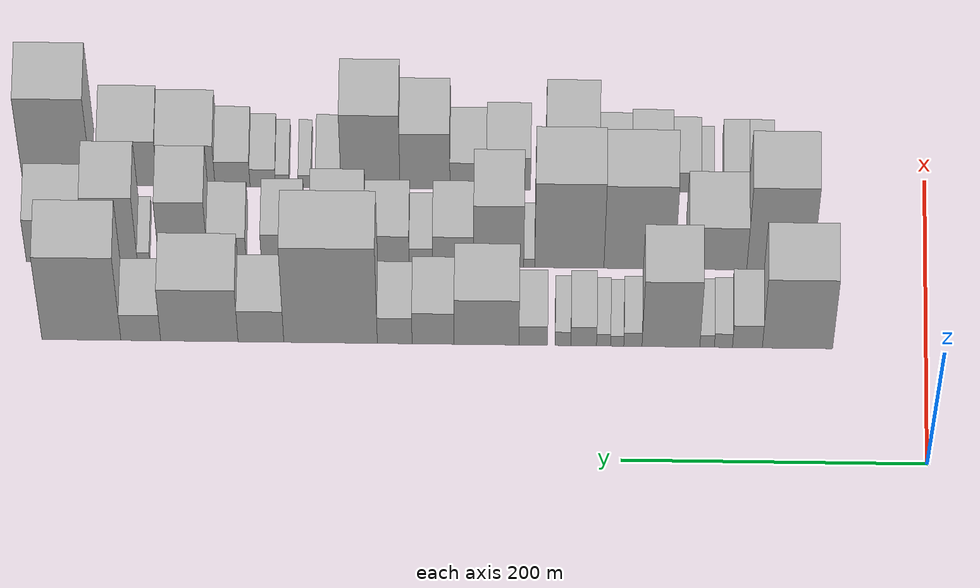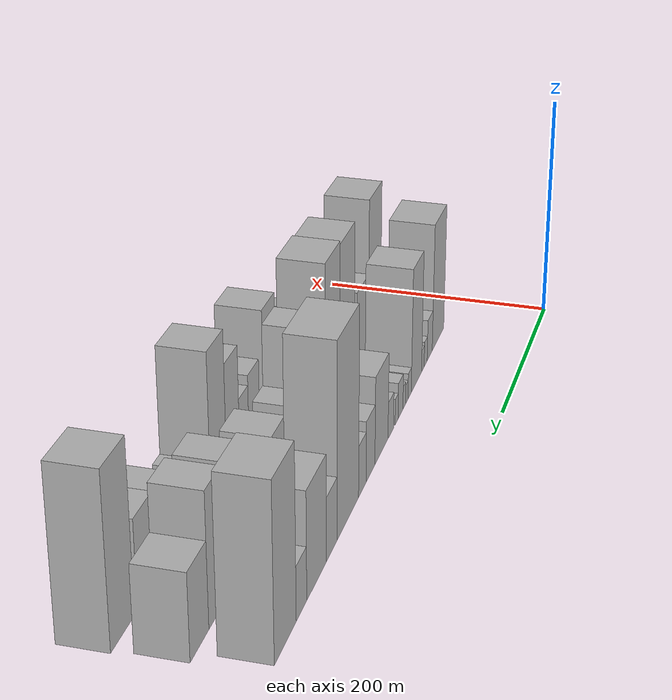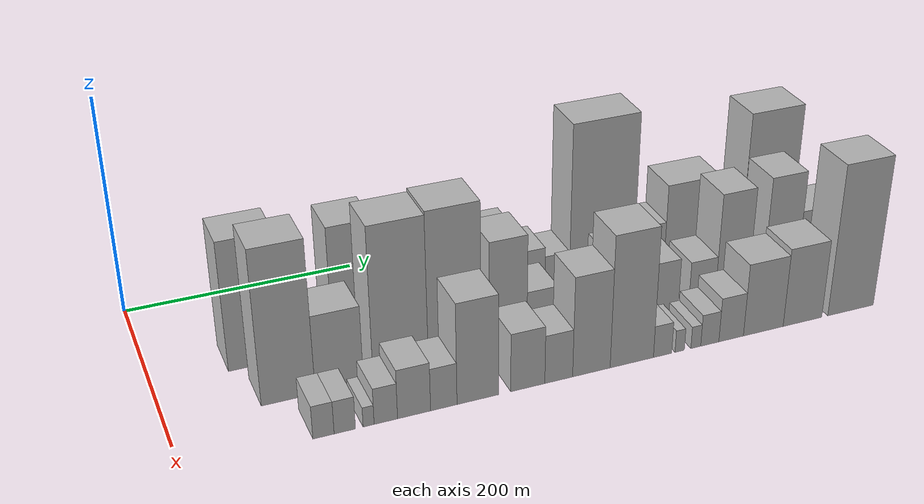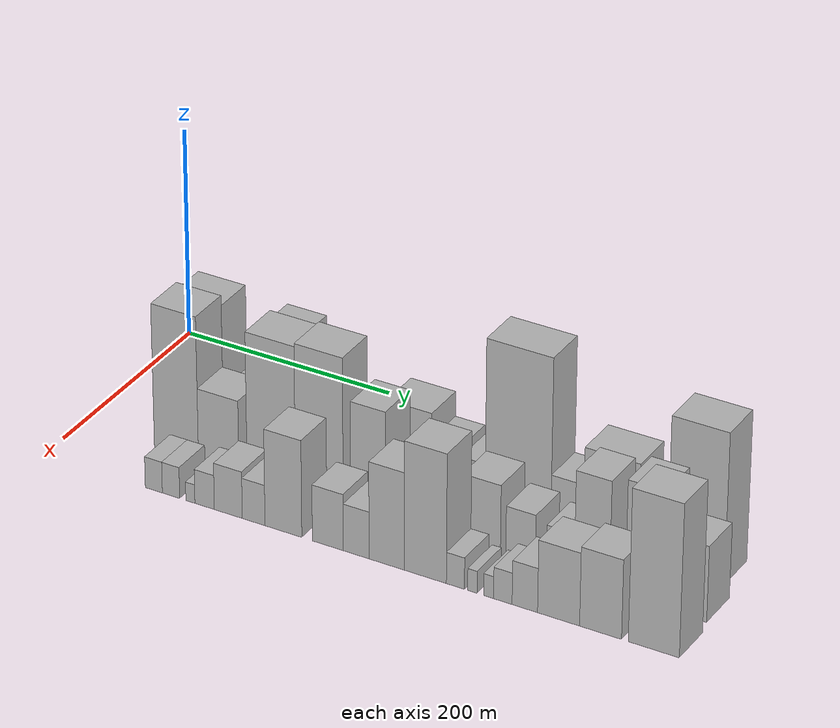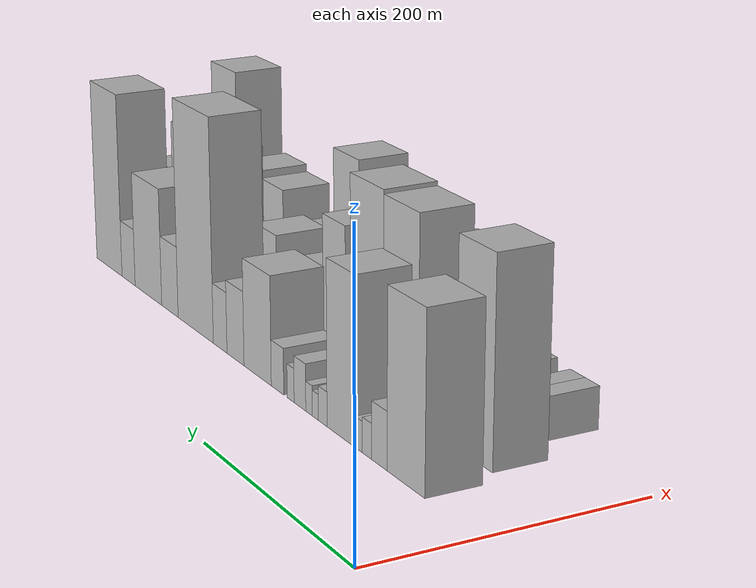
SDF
<sdf version="1.6">
 <world name="default">
  <model name="building_19">
   <static>1</static>
   <pose>100.0000 84.7058 0 0.000000 0.000000 0.000000</pose>
   <link name="link">
    <pose>0 0 60.00 0 0 0</pose>
    <collision name="collision"><geometry><box><size>40.0000 46.1204 120.0000</size></box></geometry></collision>
    <visual name="visual">
     <cast_shadows>0</cast_shadows>
     <geometry><box><size>40.0000 46.1204 120.0000</size></box></geometry>
     <material>
      <script>
       <uri>model://HANNAS_wall/materials/scripts</uri>
       <uri>model://HANNAS_wall/materials/textures</uri>
       <name>vrc/HANNAS_wall</name>
      </script>
     </material>
    </visual>
   </link>
  </model>
  <model name="building_20">
   <static>1</static>
   <pose>100.0000 117.5648 0 0.000000 0.000000 0.000000</pose>
   <link name="link">
    <pose>0 0 19.50 0 0 0</pose>
    <collision name="collision"><geometry><box><size>40.0000 19.5976 39.0000</size></box></geometry></collision>
    <visual name="visual">
     <cast_shadows>0</cast_shadows>
     <geometry><box><size>40.0000 19.5976 39.0000</size></box></geometry>
     <material>
      <script>
       <uri>model://HANNAS_wall/materials/scripts</uri>
       <uri>model://HANNAS_wall/materials/textures</uri>
       <name>vrc/HANNAS_wall</name>
      </script>
     </material>
    </visual>
   </link>
  </model>
  <model name="building_21">
   <static>1</static>
   <pose>100.0000 133.3161 0 0.000000 0.000000 0.000000</pose>
   <link name="link">
    <pose>0 0 12.00 0 0 0</pose>
    <collision name="collision"><geometry><box><size>40.0000 11.9050 24.0000</size></box></geometry></collision>
    <visual name="visual">
     <cast_shadows>0</cast_shadows>
     <geometry><box><size>40.0000 11.9050 24.0000</size></box></geometry>
     <material>
      <script>
       <uri>model://HANNAS_wall/materials/scripts</uri>
       <uri>model://HANNAS_wall/materials/textures</uri>
       <name>vrc/HANNAS_wall</name>
      </script>
     </material>
    </visual>
   </link>
  </model>
  <model name="building_22">
   <static>1</static>
   <pose>100.0000 144.0258 0 0.000000 0.000000 0.000000</pose>
   <link name="link">
    <pose>0 0 10.50 0 0 0</pose>
    <collision name="collision"><geometry><box><size>40.0000 9.5144 21.0000</size></box></geometry></collision>
    <visual name="visual">
     <cast_shadows>0</cast_shadows>
     <geometry><box><size>40.0000 9.5144 21.0000</size></box></geometry>
     <material>
      <script>
       <uri>model://HANNAS_wall/materials/scripts</uri>
       <uri>model://HANNAS_wall/materials/textures</uri>
       <name>vrc/HANNAS_wall</name>
      </script>
     </material>
    </visual>
   </link>
  </model>
  <model name="building_23">
   <static>1</static>
   <pose>100.0000 167.7556 0 0.000000 0.000000 0.000000</pose>
   <link name="link">
    <pose>0 0 57.00 0 0 0</pose>
    <collision name="collision"><geometry><box><size>40.0000 37.9452 114.0000</size></box></geometry></collision>
    <visual name="visual">
     <cast_shadows>0</cast_shadows>
     <geometry><box><size>40.0000 37.9452 114.0000</size></box></geometry>
     <material>
      <script>
       <uri>model://HANNAS_wall/materials/scripts</uri>
       <uri>model://HANNAS_wall/materials/textures</uri>
       <name>vrc/HANNAS_wall</name>
      </script>
     </material>
    </visual>
   </link>
  </model>
  <model name="building_24">
   <static>1</static>
   <pose>100.0000 192.7151 0 0.000000 0.000000 0.000000</pose>
   <link name="link">
    <pose>0 0 12.00 0 0 0</pose>
    <collision name="collision"><geometry><box><size>40.0000 11.9739 24.0000</size></box></geometry></collision>
    <visual name="visual">
     <cast_shadows>0</cast_shadows>
     <geometry><box><size>40.0000 11.9739 24.0000</size></box></geometry>
     <material>
      <script>
       <uri>model://HANNAS_wall/materials/scripts</uri>
       <uri>model://HANNAS_wall/materials/textures</uri>
       <name>vrc/HANNAS_wall</name>
      </script>
     </material>
    </visual>
   </link>
  </model>
  <model name="building_25">
   <static>1</static>
   <pose>100.0000 203.0524 0 0.000000 0.000000 0.000000</pose>
   <link name="link">
    <pose>0 0 9.00 0 0 0</pose>
    <collision name="collision"><geometry><box><size>40.0000 8.7008 18.0000</size></box></geometry></collision>
    <visual name="visual">
     <cast_shadows>0</cast_shadows>
     <geometry><box><size>40.0000 8.7008 18.0000</size></box></geometry>
     <material>
      <script>
       <uri>model://HANNAS_wall/materials/scripts</uri>
       <uri>model://HANNAS_wall/materials/textures</uri>
       <name>vrc/HANNAS_wall</name>
      </script>
     </material>
    </visual>
   </link>
  </model>
  <model name="building_26">
   <static>1</static>
   <pose>100.0000 212.0051 0 0.000000 0.000000 0.000000</pose>
   <link name="link">
    <pose>0 0 10.50 0 0 0</pose>
    <collision name="collision"><geometry><box><size>40.0000 9.2047 21.0000</size></box></geometry></collision>
    <visual name="visual">
     <cast_shadows>0</cast_shadows>
     <geometry><box><size>40.0000 9.2047 21.0000</size></box></geometry>
     <material>
      <script>
       <uri>model://HANNAS_wall/materials/scripts</uri>
       <uri>model://HANNAS_wall/materials/textures</uri>
       <name>vrc/HANNAS_wall</name>
      </script>
     </material>
    </visual>
   </link>
  </model>
  <model name="building_27">
   <static>1</static>
   <pose>100.0000 225.0518 0 0.000000 0.000000 0.000000</pose>
   <link name="link">
    <pose>0 0 16.50 0 0 0</pose>
    <collision name="collision"><geometry><box><size>40.0000 16.8886 33.0000</size></box></geometry></collision>
    <visual name="visual">
     <cast_shadows>0</cast_shadows>
     <geometry><box><size>40.0000 16.8886 33.0000</size></box></geometry>
     <material>
      <script>
       <uri>model://HANNAS_wall/materials/scripts</uri>
       <uri>model://HANNAS_wall/materials/textures</uri>
       <name>vrc/HANNAS_wall</name>
      </script>
     </material>
    </visual>
   </link>
  </model>
  <model name="building_28">
   <static>1</static>
   <pose>100.0000 238.6537 0 0.000000 0.000000 0.000000</pose>
   <link name="link">
    <pose>0 0 12.00 0 0 0</pose>
    <collision name="collision"><geometry><box><size>40.0000 10.3152 24.0000</size></box></geometry></collision>
    <visual name="visual">
     <cast_shadows>0</cast_shadows>
     <geometry><box><size>40.0000 10.3152 24.0000</size></box></geometry>
     <material>
      <script>
       <uri>model://HANNAS_wall/materials/scripts</uri>
       <uri>model://HANNAS_wall/materials/textures</uri>
       <name>vrc/HANNAS_wall</name>
      </script>
     </material>
    </visual>
   </link>
  </model>
  <model name="building_29">
   <static>1</static>
   <pose>100.0000 258.1720 0 0.000000 0.000000 0.000000</pose>
   <link name="link">
    <pose>0 0 16.50 0 0 0</pose>
    <collision name="collision"><geometry><box><size>40.0000 18.7214 33.0000</size></box></geometry></collision>
    <visual name="visual">
     <cast_shadows>0</cast_shadows>
     <geometry><box><size>40.0000 18.7214 33.0000</size></box></geometry>
     <material>
      <script>
       <uri>model://HANNAS_wall/materials/scripts</uri>
       <uri>model://HANNAS_wall/materials/textures</uri>
       <name>vrc/HANNAS_wall</name>
      </script>
     </material>
    </visual>
   </link>
  </model>
  <model name="building_30">
   <static>1</static>
   <pose>100.0000 288.7846 0 0.000000 0.000000 0.000000</pose>
   <link name="link">
    <pose>0 0 39.00 0 0 0</pose>
    <collision name="collision"><geometry><box><size>40.0000 42.5040 78.0000</size></box></geometry></collision>
    <visual name="visual">
     <cast_shadows>0</cast_shadows>
     <geometry><box><size>40.0000 42.5040 78.0000</size></box></geometry>
     <material>
      <script>
       <uri>model://HANNAS_wall/materials/scripts</uri>
       <uri>model://HANNAS_wall/materials/textures</uri>
       <name>vrc/HANNAS_wall</name>
      </script>
     </material>
    </visual>
   </link>
  </model>
  <model name="building_31">
   <static>1</static>
   <pose>100.0000 323.8512 0 0.000000 0.000000 0.000000</pose>
   <link name="link">
    <pose>0 0 27.00 0 0 0</pose>
    <collision name="collision"><geometry><box><size>40.0000 27.6292 54.0000</size></box></geometry></collision>
    <visual name="visual">
     <cast_shadows>0</cast_shadows>
     <geometry><box><size>40.0000 27.6292 54.0000</size></box></geometry>
     <material>
      <script>
       <uri>model://HANNAS_wall/materials/scripts</uri>
       <uri>model://HANNAS_wall/materials/textures</uri>
       <name>vrc/HANNAS_wall</name>
      </script>
     </material>
    </visual>
   </link>
  </model>
  <model name="building_32">
   <static>1</static>
   <pose>100.0000 349.0639 0 0.000000 0.000000 0.000000</pose>
   <link name="link">
    <pose>0 0 22.50 0 0 0</pose>
    <collision name="collision"><geometry><box><size>40.0000 22.7960 45.0000</size></box></geometry></collision>
    <visual name="visual">
     <cast_shadows>0</cast_shadows>
     <geometry><box><size>40.0000 22.7960 45.0000</size></box></geometry>
     <material>
      <script>
       <uri>model://HANNAS_wall/materials/scripts</uri>
       <uri>model://HANNAS_wall/materials/textures</uri>
       <name>vrc/HANNAS_wall</name>
      </script>
     </material>
    </visual>
   </link>
  </model>
  <model name="building_33">
   <static>1</static>
   <pose>100.0000 391.1682 0 0.000000 0.000000 0.000000</pose>
   <link name="link">
    <pose>0 0 82.50 0 0 0</pose>
    <collision name="collision"><geometry><box><size>40.0000 61.4127 165.0000</size></box></geometry></collision>
    <visual name="visual">
     <cast_shadows>0</cast_shadows>
     <geometry><box><size>40.0000 61.4127 165.0000</size></box></geometry>
     <material>
      <script>
       <uri>model://HANNAS_wall/materials/scripts</uri>
       <uri>model://HANNAS_wall/materials/textures</uri>
       <name>vrc/HANNAS_wall</name>
      </script>
     </material>
    </visual>
   </link>
  </model>
  <model name="building_34">
   <static>1</static>
   <pose>100.0000 436.8988 0 0.000000 0.000000 0.000000</pose>
   <link name="link">
    <pose>0 0 27.00 0 0 0</pose>
    <collision name="collision"><geometry><box><size>40.0000 30.0485 54.0000</size></box></geometry></collision>
    <visual name="visual">
     <cast_shadows>0</cast_shadows>
     <geometry><box><size>40.0000 30.0485 54.0000</size></box></geometry>
     <material>
      <script>
       <uri>model://HANNAS_wall/materials/scripts</uri>
       <uri>model://HANNAS_wall/materials/textures</uri>
       <name>vrc/HANNAS_wall</name>
      </script>
     </material>
    </visual>
   </link>
  </model>
  <model name="building_35">
   <static>1</static>
   <pose>100.0000 477.3324 0 0.000000 0.000000 0.000000</pose>
   <link name="link">
    <pose>0 0 45.00 0 0 0</pose>
    <collision name="collision"><geometry><box><size>40.0000 50.8187 90.0000</size></box></geometry></collision>
    <visual name="visual">
     <cast_shadows>0</cast_shadows>
     <geometry><box><size>40.0000 50.8187 90.0000</size></box></geometry>
     <material>
      <script>
       <uri>model://HANNAS_wall/materials/scripts</uri>
       <uri>model://HANNAS_wall/materials/textures</uri>
       <name>vrc/HANNAS_wall</name>
      </script>
     </material>
    </visual>
   </link>
  </model>
  <model name="building_36">
   <static>1</static>
   <pose>100.0000 515.8046 0 0.000000 0.000000 0.000000</pose>
   <link name="link">
    <pose>0 0 22.50 0 0 0</pose>
    <collision name="collision"><geometry><box><size>40.0000 26.1258 45.0000</size></box></geometry></collision>
    <visual name="visual">
     <cast_shadows>0</cast_shadows>
     <geometry><box><size>40.0000 26.1258 45.0000</size></box></geometry>
     <material>
      <script>
       <uri>model://HANNAS_wall/materials/scripts</uri>
       <uri>model://HANNAS_wall/materials/textures</uri>
       <name>vrc/HANNAS_wall</name>
      </script>
     </material>
    </visual>
   </link>
  </model>
  <model name="building_37">
   <static>1</static>
   <pose>100.0000 554.7677 0 0.000000 0.000000 0.000000</pose>
   <link name="link">
    <pose>0 0 72.00 0 0 0</pose>
    <collision name="collision"><geometry><box><size>40.0000 51.8003 144.0000</size></box></geometry></collision>
    <visual name="visual">
     <cast_shadows>0</cast_shadows>
     <geometry><box><size>40.0000 51.8003 144.0000</size></box></geometry>
     <material>
      <script>
       <uri>model://HANNAS_wall/materials/scripts</uri>
       <uri>model://HANNAS_wall/materials/textures</uri>
       <name>vrc/HANNAS_wall</name>
      </script>
     </material>
    </visual>
   </link>
  </model>
  <model name="building_56">
   <static>1</static>
   <pose>155.0000 96.2693 0 0.000000 0.000000 0.000000</pose>
   <link name="link">
    <pose>0 0 70.50 0 0 0</pose>
    <collision name="collision"><geometry><box><size>40.0000 43.3718 141.0000</size></box></geometry></collision>
    <visual name="visual">
     <cast_shadows>0</cast_shadows>
     <geometry><box><size>40.0000 43.3718 141.0000</size></box></geometry>
     <material>
      <script>
       <uri>model://HANNAS_wall/materials/scripts</uri>
       <uri>model://HANNAS_wall/materials/textures</uri>
       <name>vrc/HANNAS_wall</name>
      </script>
     </material>
    </visual>
   </link>
  </model>
  <model name="building_57">
   <static>1</static>
   <pose>155.0000 137.6904 0 0.000000 0.000000 0.000000</pose>
   <link name="link">
    <pose>0 0 36.00 0 0 0</pose>
    <collision name="collision"><geometry><box><size>40.0000 39.4704 72.0000</size></box></geometry></collision>
    <visual name="visual">
     <cast_shadows>0</cast_shadows>
     <geometry><box><size>40.0000 39.4704 72.0000</size></box></geometry>
     <material>
      <script>
       <uri>model://HANNAS_wall/materials/scripts</uri>
       <uri>model://HANNAS_wall/materials/textures</uri>
       <name>vrc/HANNAS_wall</name>
      </script>
     </material>
    </visual>
   </link>
  </model>
  <model name="building_58">
   <static>1</static>
   <pose>155.0000 188.7543 0 0.000000 0.000000 0.000000</pose>
   <link name="link">
    <pose>0 0 70.50 0 0 0</pose>
    <collision name="collision"><geometry><box><size>40.0000 46.6576 141.0000</size></box></geometry></collision>
    <visual name="visual">
     <cast_shadows>0</cast_shadows>
     <geometry><box><size>40.0000 46.6576 141.0000</size></box></geometry>
     <material>
      <script>
       <uri>model://HANNAS_wall/materials/scripts</uri>
       <uri>model://HANNAS_wall/materials/textures</uri>
       <name>vrc/HANNAS_wall</name>
      </script>
     </material>
    </visual>
   </link>
  </model>
  <model name="building_59">
   <static>1</static>
   <pose>155.0000 234.9090 0 0.000000 0.000000 0.000000</pose>
   <link name="link">
    <pose>0 0 72.00 0 0 0</pose>
    <collision name="collision"><geometry><box><size>40.0000 45.6517 144.0000</size></box></geometry></collision>
    <visual name="visual">
     <cast_shadows>0</cast_shadows>
     <geometry><box><size>40.0000 45.6517 144.0000</size></box></geometry>
     <material>
      <script>
       <uri>model://HANNAS_wall/materials/scripts</uri>
       <uri>model://HANNAS_wall/materials/textures</uri>
       <name>vrc/HANNAS_wall</name>
      </script>
     </material>
    </visual>
   </link>
  </model>
  <model name="building_60">
   <static>1</static>
   <pose>155.0000 261.3366 0 0.000000 0.000000 0.000000</pose>
   <link name="link">
    <pose>0 0 7.50 0 0 0</pose>
    <collision name="collision"><geometry><box><size>40.0000 7.2035 15.0000</size></box></geometry></collision>
    <visual name="visual">
     <cast_shadows>0</cast_shadows>
     <geometry><box><size>40.0000 7.2035 15.0000</size></box></geometry>
     <material>
      <script>
       <uri>model://HANNAS_wall/materials/scripts</uri>
       <uri>model://HANNAS_wall/materials/textures</uri>
       <name>vrc/HANNAS_wall</name>
      </script>
     </material>
    </visual>
   </link>
  </model>
  <model name="building_61">
   <static>1</static>
   <pose>155.0000 281.4265 0 0.000000 0.000000 0.000000</pose>
   <link name="link">
    <pose>0 0 52.50 0 0 0</pose>
    <collision name="collision"><geometry><box><size>40.0000 32.9763 105.0000</size></box></geometry></collision>
    <visual name="visual">
     <cast_shadows>0</cast_shadows>
     <geometry><box><size>40.0000 32.9763 105.0000</size></box></geometry>
     <material>
      <script>
       <uri>model://HANNAS_wall/materials/scripts</uri>
       <uri>model://HANNAS_wall/materials/textures</uri>
       <name>vrc/HANNAS_wall</name>
      </script>
     </material>
    </visual>
   </link>
  </model>
  <model name="building_62">
   <static>1</static>
   <pose>155.0000 311.4935 0 0.000000 0.000000 0.000000</pose>
   <link name="link">
    <pose>0 0 25.50 0 0 0</pose>
    <collision name="collision"><geometry><box><size>40.0000 27.1577 51.0000</size></box></geometry></collision>
    <visual name="visual">
     <cast_shadows>0</cast_shadows>
     <geometry><box><size>40.0000 27.1577 51.0000</size></box></geometry>
     <material>
      <script>
       <uri>model://HANNAS_wall/materials/scripts</uri>
       <uri>model://HANNAS_wall/materials/textures</uri>
       <name>vrc/HANNAS_wall</name>
      </script>
     </material>
    </visual>
   </link>
  </model>
  <model name="building_63">
   <static>1</static>
   <pose>155.0000 332.7530 0 0.000000 0.000000 0.000000</pose>
   <link name="link">
    <pose>0 0 15.00 0 0 0</pose>
    <collision name="collision"><geometry><box><size>40.0000 15.3614 30.0000</size></box></geometry></collision>
    <visual name="visual">
     <cast_shadows>0</cast_shadows>
     <geometry><box><size>40.0000 15.3614 30.0000</size></box></geometry>
     <material>
      <script>
       <uri>model://HANNAS_wall/materials/scripts</uri>
       <uri>model://HANNAS_wall/materials/textures</uri>
       <name>vrc/HANNAS_wall</name>
      </script>
     </material>
    </visual>
   </link>
  </model>
  <model name="building_64">
   <static>1</static>
   <pose>155.0000 355.1592 0 0.000000 0.000000 0.000000</pose>
   <link name="link">
    <pose>0 0 25.50 0 0 0</pose>
    <collision name="collision"><geometry><box><size>40.0000 29.4510 51.0000</size></box></geometry></collision>
    <visual name="visual">
     <cast_shadows>0</cast_shadows>
     <geometry><box><size>40.0000 29.4510 51.0000</size></box></geometry>
     <material>
      <script>
       <uri>model://HANNAS_wall/materials/scripts</uri>
       <uri>model://HANNAS_wall/materials/textures</uri>
       <name>vrc/HANNAS_wall</name>
      </script>
     </material>
    </visual>
   </link>
  </model>
  <model name="building_65">
   <static>1</static>
   <pose>155.0000 387.6411 0 0.000000 0.000000 0.000000</pose>
   <link name="link">
    <pose>0 0 34.50 0 0 0</pose>
    <collision name="collision"><geometry><box><size>40.0000 35.5128 69.0000</size></box></geometry></collision>
    <visual name="visual">
     <cast_shadows>0</cast_shadows>
     <geometry><box><size>40.0000 35.5128 69.0000</size></box></geometry>
     <material>
      <script>
       <uri>model://HANNAS_wall/materials/scripts</uri>
       <uri>model://HANNAS_wall/materials/textures</uri>
       <name>vrc/HANNAS_wall</name>
      </script>
     </material>
    </visual>
   </link>
  </model>
  <model name="building_66">
   <static>1</static>
   <pose>155.0000 424.0553 0 0.000000 0.000000 0.000000</pose>
   <link name="link">
    <pose>0 0 25.50 0 0 0</pose>
    <collision name="collision"><geometry><box><size>40.0000 27.3155 51.0000</size></box></geometry></collision>
    <visual name="visual">
     <cast_shadows>0</cast_shadows>
     <geometry><box><size>40.0000 27.3155 51.0000</size></box></geometry>
     <material>
      <script>
       <uri>model://HANNAS_wall/materials/scripts</uri>
       <uri>model://HANNAS_wall/materials/textures</uri>
       <name>vrc/HANNAS_wall</name>
      </script>
     </material>
    </visual>
   </link>
  </model>
  <model name="building_67">
   <static>1</static>
   <pose>155.0000 460.4384 0 0.000000 0.000000 0.000000</pose>
   <link name="link">
    <pose>0 0 22.50 0 0 0</pose>
    <collision name="collision"><geometry><box><size>40.0000 25.4508 45.0000</size></box></geometry></collision>
    <visual name="visual">
     <cast_shadows>0</cast_shadows>
     <geometry><box><size>40.0000 25.4508 45.0000</size></box></geometry>
     <material>
      <script>
       <uri>model://HANNAS_wall/materials/scripts</uri>
       <uri>model://HANNAS_wall/materials/textures</uri>
       <name>vrc/HANNAS_wall</name>
      </script>
     </material>
    </visual>
   </link>
  </model>
  <model name="building_68">
   <static>1</static>
   <pose>155.0000 489.2517 0 0.000000 0.000000 0.000000</pose>
   <link name="link">
    <pose>0 0 52.50 0 0 0</pose>
    <collision name="collision"><geometry><box><size>40.0000 32.1758 105.0000</size></box></geometry></collision>
    <visual name="visual">
     <cast_shadows>0</cast_shadows>
     <geometry><box><size>40.0000 32.1758 105.0000</size></box></geometry>
     <material>
      <script>
       <uri>model://HANNAS_wall/materials/scripts</uri>
       <uri>model://HANNAS_wall/materials/textures</uri>
       <name>vrc/HANNAS_wall</name>
      </script>
     </material>
    </visual>
   </link>
  </model>
  <model name="building_69">
   <static>1</static>
   <pose>155.0000 515.4614 0 0.000000 0.000000 0.000000</pose>
   <link name="link">
    <pose>0 0 9.00 0 0 0</pose>
    <collision name="collision"><geometry><box><size>40.0000 8.2436 18.0000</size></box></geometry></collision>
    <visual name="visual">
     <cast_shadows>0</cast_shadows>
     <geometry><box><size>40.0000 8.2436 18.0000</size></box></geometry>
     <material>
      <script>
       <uri>model://HANNAS_wall/materials/scripts</uri>
       <uri>model://HANNAS_wall/materials/textures</uri>
       <name>vrc/HANNAS_wall</name>
      </script>
     </material>
    </visual>
   </link>
  </model>
  <model name="building_70">
   <static>1</static>
   <pose>155.0000 536.5791 0 0.000000 0.000000 0.000000</pose>
   <link name="link">
    <pose>0 0 55.50 0 0 0</pose>
    <collision name="collision"><geometry><box><size>40.0000 33.9919 111.0000</size></box></geometry></collision>
    <visual name="visual">
     <cast_shadows>0</cast_shadows>
     <geometry><box><size>40.0000 33.9919 111.0000</size></box></geometry>
     <material>
      <script>
       <uri>model://HANNAS_wall/materials/scripts</uri>
       <uri>model://HANNAS_wall/materials/textures</uri>
       <name>vrc/HANNAS_wall</name>
      </script>
     </material>
    </visual>
   </link>
  </model>
  <model name="building_71">
   <static>1</static>
   <pose>155.0000 573.1837 0 0.000000 0.000000 0.000000</pose>
   <link name="link">
    <pose>0 0 36.00 0 0 0</pose>
    <collision name="collision"><geometry><box><size>40.0000 39.2172 72.0000</size></box></geometry></collision>
    <visual name="visual">
     <cast_shadows>0</cast_shadows>
     <geometry><box><size>40.0000 39.2172 72.0000</size></box></geometry>
     <material>
      <script>
       <uri>model://HANNAS_wall/materials/scripts</uri>
       <uri>model://HANNAS_wall/materials/textures</uri>
       <name>vrc/HANNAS_wall</name>
      </script>
     </material>
    </visual>
   </link>
  </model>
  <model name="building_89">
   <static>1</static>
   <pose>210.0000 108.5953 0 0.000000 0.000000 0.000000</pose>
   <link name="link">
    <pose>0 0 15.00 0 0 0</pose>
    <collision name="collision"><geometry><box><size>40.0000 16.6096 30.0000</size></box></geometry></collision>
    <visual name="visual">
     <cast_shadows>0</cast_shadows>
     <geometry><box><size>40.0000 16.6096 30.0000</size></box></geometry>
     <material>
      <script>
       <uri>model://HANNAS_wall/materials/scripts</uri>
       <uri>model://HANNAS_wall/materials/textures</uri>
       <name>vrc/HANNAS_wall</name>
      </script>
     </material>
    </visual>
   </link>
  </model>
  <model name="building_90">
   <static>1</static>
   <pose>210.0000 125.3184 0 0.000000 0.000000 0.000000</pose>
   <link name="link">
    <pose>0 0 15.00 0 0 0</pose>
    <collision name="collision"><geometry><box><size>40.0000 16.8365 30.0000</size></box></geometry></collision>
    <visual name="visual">
     <cast_shadows>0</cast_shadows>
     <geometry><box><size>40.0000 16.8365 30.0000</size></box></geometry>
     <material>
      <script>
       <uri>model://HANNAS_wall/materials/scripts</uri>
       <uri>model://HANNAS_wall/materials/textures</uri>
       <name>vrc/HANNAS_wall</name>
      </script>
     </material>
    </visual>
   </link>
  </model>
  <model name="building_91">
   <static>1</static>
   <pose>210.0000 144.1286 0 0.000000 0.000000 0.000000</pose>
   <link name="link">
    <pose>0 0 9.00 0 0 0</pose>
    <collision name="collision"><geometry><box><size>40.0000 8.7840 18.0000</size></box></geometry></collision>
    <visual name="visual">
     <cast_shadows>0</cast_shadows>
     <geometry><box><size>40.0000 8.7840 18.0000</size></box></geometry>
     <material>
      <script>
       <uri>model://HANNAS_wall/materials/scripts</uri>
       <uri>model://HANNAS_wall/materials/textures</uri>
       <name>vrc/HANNAS_wall</name>
      </script>
     </material>
    </visual>
   </link>
  </model>
  <model name="building_92">
   <static>1</static>
   <pose>210.0000 157.9260 0 0.000000 0.000000 0.000000</pose>
   <link name="link">
    <pose>0 0 16.50 0 0 0</pose>
    <collision name="collision"><geometry><box><size>40.0000 18.8107 33.0000</size></box></geometry></collision>
    <visual name="visual">
     <cast_shadows>0</cast_shadows>
     <geometry><box><size>40.0000 18.8107 33.0000</size></box></geometry>
     <material>
      <script>
       <uri>model://HANNAS_wall/materials/scripts</uri>
       <uri>model://HANNAS_wall/materials/textures</uri>
       <name>vrc/HANNAS_wall</name>
      </script>
     </material>
    </visual>
   </link>
  </model>
  <model name="building_93">
   <static>1</static>
   <pose>210.0000 180.7634 0 0.000000 0.000000 0.000000</pose>
   <link name="link">
    <pose>0 0 22.50 0 0 0</pose>
    <collision name="collision"><geometry><box><size>40.0000 26.8643 45.0000</size></box></geometry></collision>
    <visual name="visual">
     <cast_shadows>0</cast_shadows>
     <geometry><box><size>40.0000 26.8643 45.0000</size></box></geometry>
     <material>
      <script>
       <uri>model://HANNAS_wall/materials/scripts</uri>
       <uri>model://HANNAS_wall/materials/textures</uri>
       <name>vrc/HANNAS_wall</name>
      </script>
     </material>
    </visual>
   </link>
  </model>
  <model name="building_94">
   <static>1</static>
   <pose>210.0000 205.0761 0 0.000000 0.000000 0.000000</pose>
   <link name="link">
    <pose>0 0 19.50 0 0 0</pose>
    <collision name="collision"><geometry><box><size>40.0000 21.7612 39.0000</size></box></geometry></collision>
    <visual name="visual">
     <cast_shadows>0</cast_shadows>
     <geometry><box><size>40.0000 21.7612 39.0000</size></box></geometry>
     <material>
      <script>
       <uri>model://HANNAS_wall/materials/scripts</uri>
       <uri>model://HANNAS_wall/materials/textures</uri>
       <name>vrc/HANNAS_wall</name>
      </script>
     </material>
    </visual>
   </link>
  </model>
  <model name="building_95">
   <static>1</static>
   <pose>210.0000 233.4802 0 0.000000 0.000000 0.000000</pose>
   <link name="link">
    <pose>0 0 46.50 0 0 0</pose>
    <collision name="collision"><geometry><box><size>40.0000 35.0469 93.0000</size></box></geometry></collision>
    <visual name="visual">
     <cast_shadows>0</cast_shadows>
     <geometry><box><size>40.0000 35.0469 93.0000</size></box></geometry>
     <material>
      <script>
       <uri>model://HANNAS_wall/materials/scripts</uri>
       <uri>model://HANNAS_wall/materials/textures</uri>
       <name>vrc/HANNAS_wall</name>
      </script>
     </material>
    </visual>
   </link>
  </model>
  <model name="building_96">
   <static>1</static>
   <pose>210.0000 275.5877 0 0.000000 0.000000 0.000000</pose>
   <link name="link">
    <pose>0 0 27.00 0 0 0</pose>
    <collision name="collision"><geometry><box><size>40.0000 29.1683 54.0000</size></box></geometry></collision>
    <visual name="visual">
     <cast_shadows>0</cast_shadows>
     <geometry><box><size>40.0000 29.1683 54.0000</size></box></geometry>
     <material>
      <script>
       <uri>model://HANNAS_wall/materials/scripts</uri>
       <uri>model://HANNAS_wall/materials/textures</uri>
       <name>vrc/HANNAS_wall</name>
      </script>
     </material>
    </visual>
   </link>
  </model>
  <model name="building_97">
   <static>1</static>
   <pose>210.0000 302.2473 0 0.000000 0.000000 0.000000</pose>
   <link name="link">
    <pose>0 0 22.50 0 0 0</pose>
    <collision name="collision"><geometry><box><size>40.0000 24.1509 45.0000</size></box></geometry></collision>
    <visual name="visual">
     <cast_shadows>0</cast_shadows>
     <geometry><box><size>40.0000 24.1509 45.0000</size></box></geometry>
     <material>
      <script>
       <uri>model://HANNAS_wall/materials/scripts</uri>
       <uri>model://HANNAS_wall/materials/textures</uri>
       <name>vrc/HANNAS_wall</name>
      </script>
     </material>
    </visual>
   </link>
  </model>
  <model name="building_98">
   <static>1</static>
   <pose>210.0000 330.8564 0 0.000000 0.000000 0.000000</pose>
   <link name="link">
    <pose>0 0 46.50 0 0 0</pose>
    <collision name="collision"><geometry><box><size>40.0000 33.0674 93.0000</size></box></geometry></collision>
    <visual name="visual">
     <cast_shadows>0</cast_shadows>
     <geometry><box><size>40.0000 33.0674 93.0000</size></box></geometry>
     <material>
      <script>
       <uri>model://HANNAS_wall/materials/scripts</uri>
       <uri>model://HANNAS_wall/materials/textures</uri>
       <name>vrc/HANNAS_wall</name>
      </script>
     </material>
    </visual>
   </link>
  </model>
  <model name="building_99">
   <static>1</static>
   <pose>210.0000 366.8509 0 0.000000 0.000000 0.000000</pose>
   <link name="link">
    <pose>0 0 61.50 0 0 0</pose>
    <collision name="collision"><geometry><box><size>40.0000 38.9215 123.0000</size></box></geometry></collision>
    <visual name="visual">
     <cast_shadows>0</cast_shadows>
     <geometry><box><size>40.0000 38.9215 123.0000</size></box></geometry>
     <material>
      <script>
       <uri>model://HANNAS_wall/materials/scripts</uri>
       <uri>model://HANNAS_wall/materials/textures</uri>
       <name>vrc/HANNAS_wall</name>
      </script>
     </material>
    </visual>
   </link>
  </model>
  <model name="building_100">
   <static>1</static>
   <pose>210.0000 394.6427 0 0.000000 0.000000 0.000000</pose>
   <link name="link">
    <pose>0 0 15.00 0 0 0</pose>
    <collision name="collision"><geometry><box><size>40.0000 16.6620 30.0000</size></box></geometry></collision>
    <visual name="visual">
     <cast_shadows>0</cast_shadows>
     <geometry><box><size>40.0000 16.6620 30.0000</size></box></geometry>
     <material>
      <script>
       <uri>model://HANNAS_wall/materials/scripts</uri>
       <uri>model://HANNAS_wall/materials/textures</uri>
       <name>vrc/HANNAS_wall</name>
      </script>
     </material>
    </visual>
   </link>
  </model>
  <model name="building_101">
   <static>1</static>
   <pose>210.0000 410.2813 0 0.000000 0.000000 0.000000</pose>
   <link name="link">
    <pose>0 0 10.50 0 0 0</pose>
    <collision name="collision"><geometry><box><size>40.0000 8.6153 21.0000</size></box></geometry></collision>
    <visual name="visual">
     <cast_shadows>0</cast_shadows>
     <geometry><box><size>40.0000 8.6153 21.0000</size></box></geometry>
     <material>
      <script>
       <uri>model://HANNAS_wall/materials/scripts</uri>
       <uri>model://HANNAS_wall/materials/textures</uri>
       <name>vrc/HANNAS_wall</name>
      </script>
     </material>
    </visual>
   </link>
  </model>
  <model name="building_102">
   <static>1</static>
   <pose>210.0000 425.1639 0 0.000000 0.000000 0.000000</pose>
   <link name="link">
    <pose>0 0 10.50 0 0 0</pose>
    <collision name="collision"><geometry><box><size>40.0000 9.1499 21.0000</size></box></geometry></collision>
    <visual name="visual">
     <cast_shadows>0</cast_shadows>
     <geometry><box><size>40.0000 9.1499 21.0000</size></box></geometry>
     <material>
      <script>
       <uri>model://HANNAS_wall/materials/scripts</uri>
       <uri>model://HANNAS_wall/materials/textures</uri>
       <name>vrc/HANNAS_wall</name>
      </script>
     </material>
    </visual>
   </link>
  </model>
  <model name="building_103">
   <static>1</static>
   <pose>210.0000 438.1748 0 0.000000 0.000000 0.000000</pose>
   <link name="link">
    <pose>0 0 15.00 0 0 0</pose>
    <collision name="collision"><geometry><box><size>40.0000 16.8719 30.0000</size></box></geometry></collision>
    <visual name="visual">
     <cast_shadows>0</cast_shadows>
     <geometry><box><size>40.0000 16.8719 30.0000</size></box></geometry>
     <material>
      <script>
       <uri>model://HANNAS_wall/materials/scripts</uri>
       <uri>model://HANNAS_wall/materials/textures</uri>
       <name>vrc/HANNAS_wall</name>
      </script>
     </material>
    </visual>
   </link>
  </model>
  <model name="building_104">
   <static>1</static>
   <pose>210.0000 458.1978 0 0.000000 0.000000 0.000000</pose>
   <link name="link">
    <pose>0 0 21.00 0 0 0</pose>
    <collision name="collision"><geometry><box><size>40.0000 23.1742 42.0000</size></box></geometry></collision>
    <visual name="visual">
     <cast_shadows>0</cast_shadows>
     <geometry><box><size>40.0000 23.1742 42.0000</size></box></geometry>
     <material>
      <script>
       <uri>model://HANNAS_wall/materials/scripts</uri>
       <uri>model://HANNAS_wall/materials/textures</uri>
       <name>vrc/HANNAS_wall</name>
      </script>
     </material>
    </visual>
   </link>
  </model>
  <model name="building_105">
   <static>1</static>
   <pose>210.0000 488.7944 0 0.000000 0.000000 0.000000</pose>
   <link name="link">
    <pose>0 0 34.50 0 0 0</pose>
    <collision name="collision"><geometry><box><size>40.0000 38.0190 69.0000</size></box></geometry></collision>
    <visual name="visual">
     <cast_shadows>0</cast_shadows>
     <geometry><box><size>40.0000 38.0190 69.0000</size></box></geometry>
     <material>
      <script>
       <uri>model://HANNAS_wall/materials/scripts</uri>
       <uri>model://HANNAS_wall/materials/textures</uri>
       <name>vrc/HANNAS_wall</name>
      </script>
     </material>
    </visual>
   </link>
  </model>
  <model name="building_106">
   <static>1</static>
   <pose>210.0000 526.6221 0 0.000000 0.000000 0.000000</pose>
   <link name="link">
    <pose>0 0 37.50 0 0 0</pose>
    <collision name="collision"><geometry><box><size>40.0000 37.6362 75.0000</size></box></geometry></collision>
    <visual name="visual">
     <cast_shadows>0</cast_shadows>
     <geometry><box><size>40.0000 37.6362 75.0000</size></box></geometry>
     <material>
      <script>
       <uri>model://HANNAS_wall/materials/scripts</uri>
       <uri>model://HANNAS_wall/materials/textures</uri>
       <name>vrc/HANNAS_wall</name>
      </script>
     </material>
    </visual>
   </link>
  </model>
  <model name="building_107">
   <static>1</static>
   <pose>210.0000 574.1400 0 0.000000 0.000000 0.000000</pose>
   <link name="link">
    <pose>0 0 72.00 0 0 0</pose>
    <collision name="collision"><geometry><box><size>40.0000 45.3996 144.0000</size></box></geometry></collision>
    <visual name="visual">
     <cast_shadows>0</cast_shadows>
     <geometry><box><size>40.0000 45.3996 144.0000</size></box></geometry>
     <material>
      <script>
       <uri>model://HANNAS_wall/materials/scripts</uri>
       <uri>model://HANNAS_wall/materials/textures</uri>
       <name>vrc/HANNAS_wall</name>
      </script>
     </material>
    </visual>
   </link>
  </model>
 </world>
</sdf>
